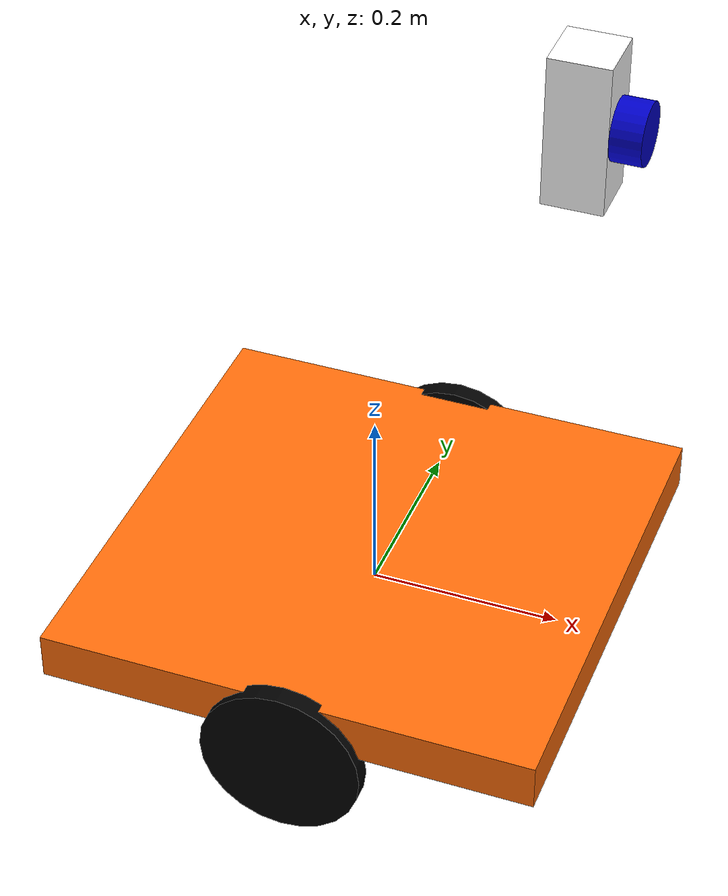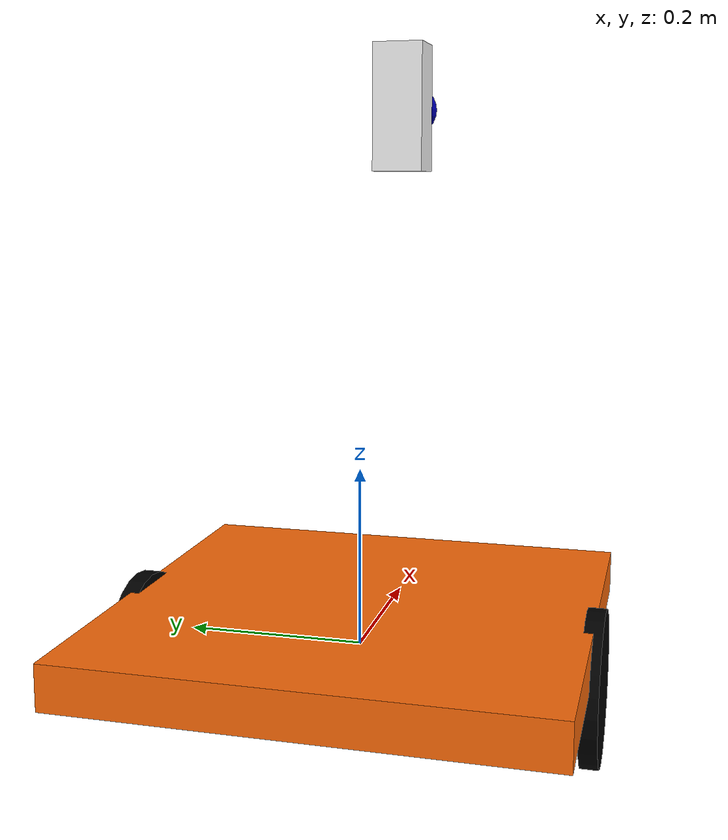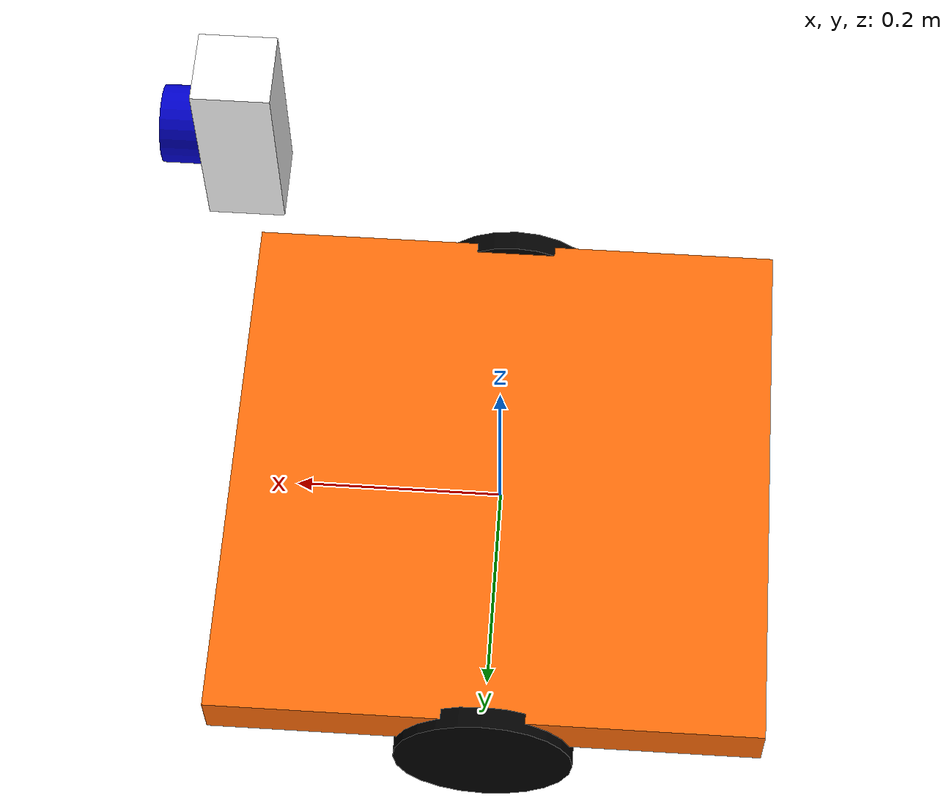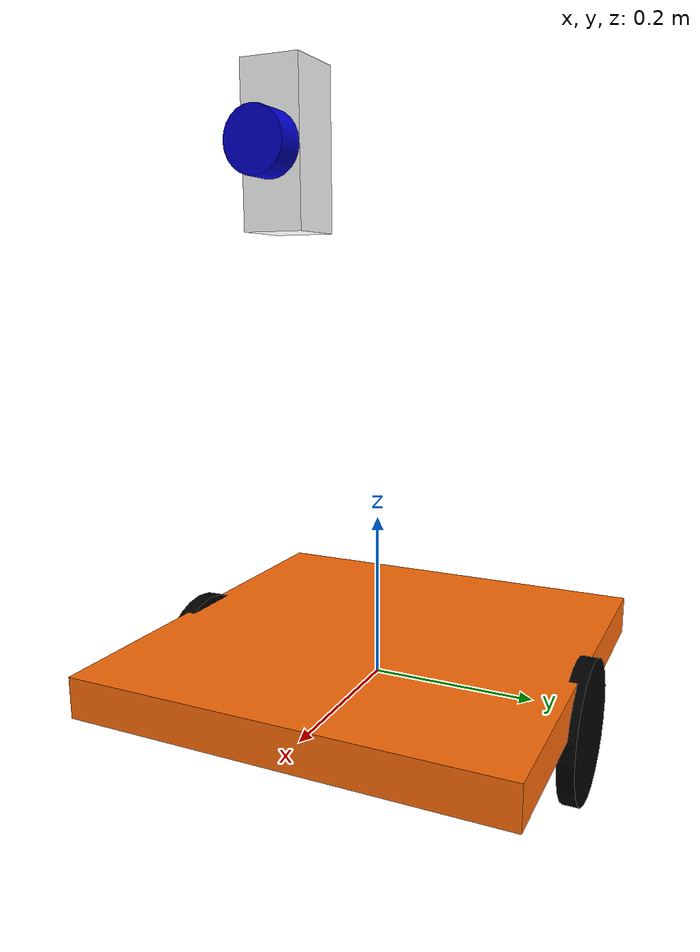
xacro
<?xml version="1.0"?>
<!-- Basic differential drive mobile base -->
<robot xmlns:xacro="http://www.ros.org/wiki/xacro" name="diffdrive_robot">
  <xacro:arg name="prefix" default="" />
  <xacro:arg name="use_mock_hardware" default="false" />

  <xacro:include filename="$(find terra_bot)/urdf/diffbot_description.urdf.xacro" />

  <!-- Import Rviz colors -->

  <!-- Import diffbot ros2_control description -->
  <xacro:include filename="$(find terra_bot)/urdf/diffbot.ros2_control.xacro" />

  <xacro:diffbot prefix="$(arg prefix)" />

  <xacro:diffbot_ros2_control
    name="DiffBot" prefix="$(arg prefix)" use_mock_hardware="$(arg use_mock_hardware)"/>

</robot>

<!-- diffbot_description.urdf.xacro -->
<robot xmlns:xacro="http://www.ros.org/wiki/xacro">

  <!-- Import Rviz colors -->
  <material name="black">
    <color rgba="0.0 0.0 0.0 1.0"/>
  </material>

  <material name="blue">
    <color rgba="0.0 0.0 0.8 1.0"/>
  </material>

  <material name="green">
    <color rgba="0.0 1.0 0.0 1.0"/>
  </material>

  <material name="grey">
    <color rgba="0.2 0.2 0.2 1.0"/>
  </material>

  <material name="orange">
    <color rgba="${255/255} ${108/255} ${10/255} 1.0"/>
  </material>

  <material name="brown">
    <color rgba="${222/255} ${207/255} ${195/255} 1.0"/>
  </material>

  <material name="red">
    <color rgba="0.8 0.0 0.0 1.0"/>
  </material>

  <material name="white">
    <color rgba="1.0 1.0 1.0 1.0"/>
  </material>

  <xacro:macro name="diffbot" params="prefix">

    <!-- Dummy Link -->

    <!-- Dummy Joint -->

    <!-- Constants for robot dimensions -->
    <xacro:property name="PI" value="3.1415926535897931"/>
    <xacro:property name="base_mass" value="0.3" />
    <!-- arbitrary value for base mass -->
    <xacro:property name="base_width" value="0.52" />
    <xacro:property name="base_length" value="0.52" />
    <xacro:property name="base_height" value="0.05" />
    <xacro:property name="wheel_mass" value="0.3" />
    <!-- arbitrary value for wheel mass -->
    <xacro:property name="wheel_radius" value="0.085" />
    <xacro:property name="wheel_width" value="0.02" />
    <xacro:property name="caster_wheel_mass" value="0.1" />
    <!-- arbitrary value for caster wheel mass -->
    <xacro:property name="caster_wheel_radius" value="0.015" />
    <xacro:property name="z_offset" value="-${base_height/2}" />
    <!-- Space btw top of beam and the each joint -->

    <!-- Base Link -->
    <link name="${prefix}base_link">
      <collision>
        <origin xyz="0 0 0" rpy="0 0 0"/>
        <geometry>
          <box size="${base_width} ${base_length} ${base_height}"/>
        </geometry>
      </collision>

      <visual>
        <origin xyz="0 0 ${base_height/2}" rpy="0 0 0"/>
        <geometry>
          <box size="${base_width} ${base_length} ${base_height}"/>
        </geometry>
        <material name="orange"/>
      </visual>

      <inertial>
        <origin xyz="0 0 0" rpy="0 0 0"/>
        <mass value="${base_mass}"/>
        <inertia ixx="${base_mass / 12.0 * (base_length*base_length + base_height*base_height)}" ixy="0.0" ixz="0.0" iyy="${base_mass / 12.0 * (base_height*base_height + base_width*base_width)}" iyz="0.0" izz="${base_mass / 12.0 * (base_width*base_width + base_length*base_length)}"/>
      </inertial>
    </link>

    <joint name="${prefix}left_wheel_joint" type="continuous">
      <parent link="${prefix}base_link"/>
      <child link="${prefix}left_wheel"/>
      <origin xyz="0 -0.26 ${z_offset}" rpy="0 0 0"/>
      <axis xyz="0 1 0"/>
      <dynamics damping="0.2"/>
      <limit effort="100" velocity="1.0"/>
    </joint>

    <!-- left wheel Link -->
    <link name="${prefix}left_wheel">
      <collision>
        <origin xyz="0 0 0" rpy="${PI/2} 0 0"/>
        <geometry>
          <cylinder length="${wheel_width}" radius="${wheel_radius}"/>
        </geometry>
      </collision>

      <visual>
        <origin xyz="0 0 0" rpy="${PI/2} 0 0"/>
        <geometry>
          <cylinder length="${wheel_width}" radius="${wheel_radius}"/>
        </geometry>
        <material name="black"/>
      </visual>

      <inertial>
        <origin xyz="0 0 0" rpy="${PI/2} 0 0"/>
        <mass value="${wheel_mass}"/>
        <inertia ixx="${wheel_mass / 12.0 * (3*wheel_radius*wheel_radius + wheel_width*wheel_width)}" ixy="0.0" ixz="0.0" iyy="${wheel_mass / 12.0 * (3*wheel_radius*wheel_radius + wheel_width*wheel_width)}" iyz="0.0" izz="${wheel_mass / 2.0 * wheel_radius*wheel_radius}"/>
      </inertial>
    </link>

    <joint name="${prefix}right_wheel_joint" type="continuous">
      <parent link="${prefix}base_link"/>
      <child link="${prefix}right_wheel"/>
      <origin xyz="0 0.26 ${z_offset}" rpy="0 0 0"/>
      <axis xyz="0 1 0"/>
      <dynamics damping="0.2"/>
      <limit effort="100" velocity="1.0"/>
    </joint>

    <!-- right wheel Link -->
    <link name="${prefix}right_wheel">
      <collision>
        <origin xyz="0 0 0" rpy="${PI/2} 0 0"/>
        <geometry>
          <cylinder length="${wheel_width}" radius="${wheel_radius}"/>
        </geometry>
      </collision>

      <visual>
        <origin xyz="0 0 0" rpy="${PI/2} 0 0"/>
        <geometry>
          <cylinder length="${wheel_width}" radius="${wheel_radius}"/>
        </geometry>
        <material name="black"/>
      </visual>

      <inertial>
        <origin xyz="0 0 0" rpy="${PI/2} 0 0"/>
        <mass value="${wheel_mass}"/>
        <inertia ixx="${wheel_mass / 12.0 * (3*wheel_radius*wheel_radius + wheel_width*wheel_width)}" ixy="0.0" ixz="0.0" iyy="${wheel_mass / 12.0 * (3*wheel_radius*wheel_radius + wheel_width*wheel_width)}" iyz="0.0" izz="${wheel_mass / 2.0 * wheel_radius*wheel_radius}"/>
      </inertial>
    </link>

    <!-- Camera Joint and Link -->
    <joint name="${prefix}camera_joint" type="fixed">
      <parent link="${prefix}base_link"/>
      <child link="${prefix}camera_link"/>
      <origin xyz="0.20 0 0.60" rpy="0 0 0"/>
    </joint>

    <link name="${prefix}camera_link">
      <visual>
        <origin xyz="0 0 0" rpy="0 0 0"/>
        <geometry>
          <box size="0.06 0.06 0.15"/>
        </geometry>
        <material name="white"/>
      </visual>
      <visual>
        <origin xyz="0.03 0 0" rpy="0 ${PI/2} 0"/>
        <geometry>
          <cylinder length="0.06" radius="0.03"/>
        </geometry>
        <material name="blue"/>
      </visual>
      <collision>
        <origin xyz="0 0 0" rpy="0 0 0"/>
        <geometry>
          <box size="0.12 0.06 0.15"/>
        </geometry>
      </collision>
    </link>

  </xacro:macro>

</robot>
